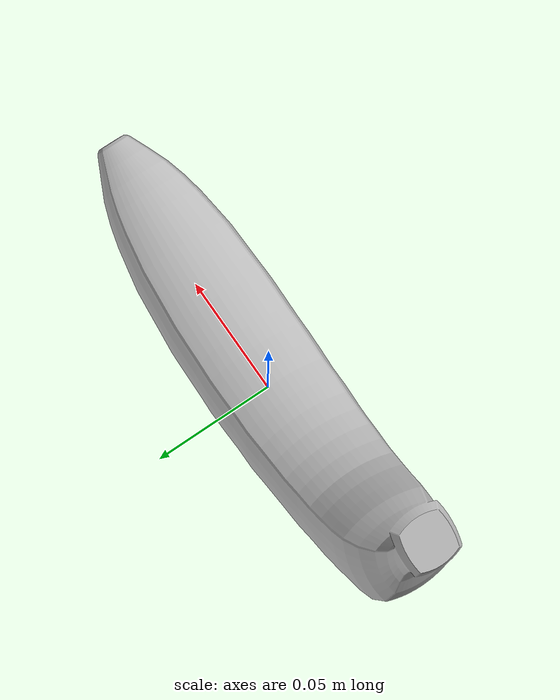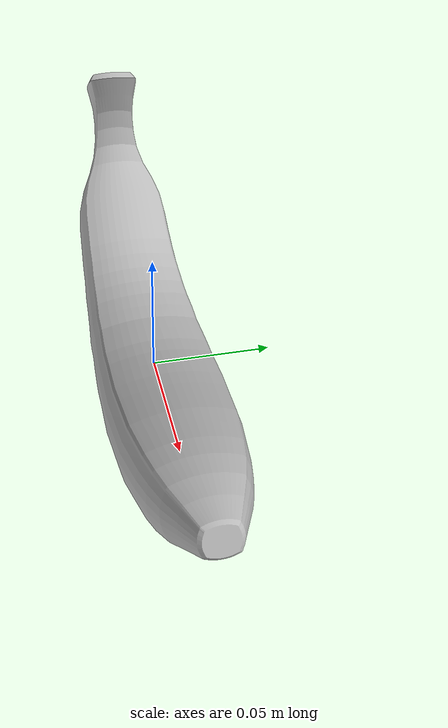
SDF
<?xml version="1.0" ?>
<sdf version="1.4">
  <model name="PnPBanana">
    <static>false</static>
        <link name="Banana_link">
            <collision name="Banana_collision">
                <geometry>
                    <box>
                        <size> 0.2 0.05 0.065 </size>
                    </box>
                </geometry>
            </collision>
            <visual name="Banana_mesh">
                <cast_shadows> true </cast_shadows>
                <geometry>
                    <mesh>
                        <uri>model://PnPBanana/banana.dae</uri>
                    </mesh>
                </geometry>
            </visual>
        </link>
  </model>
</sdf>
